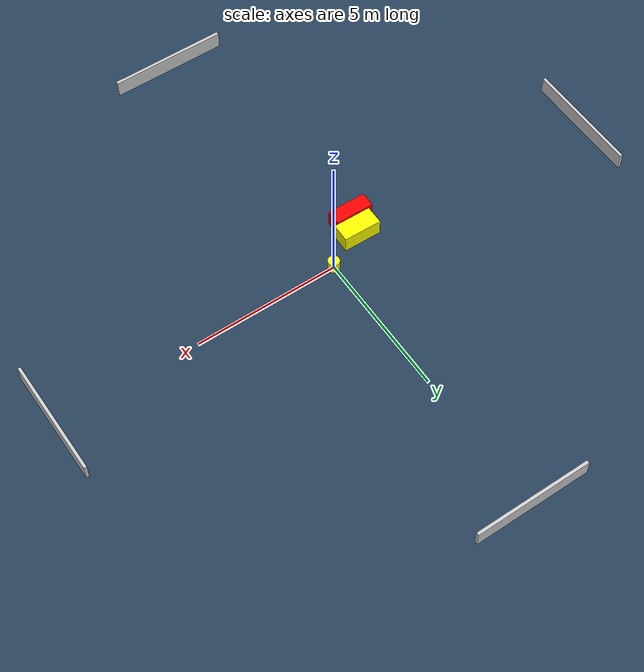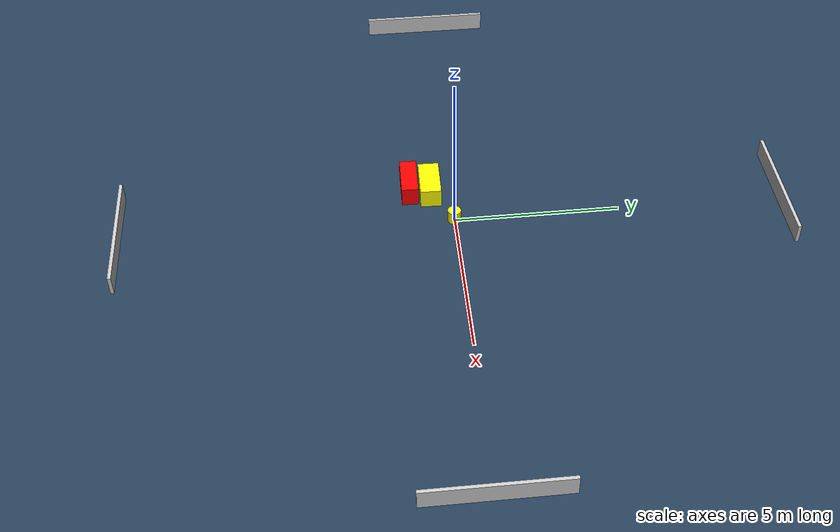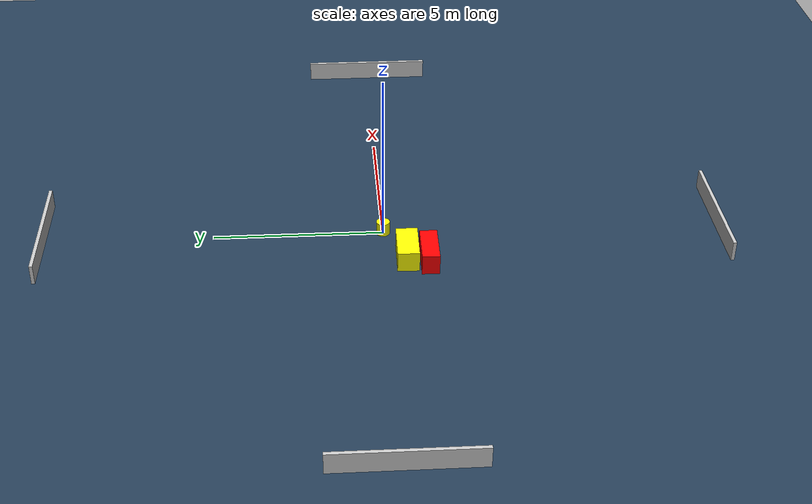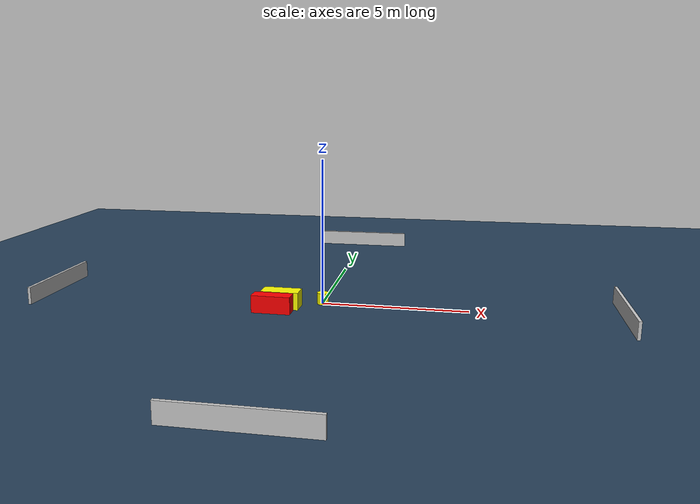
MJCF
<?xml version="1.0" ?>
<mujoco model="generated_environment">
  <option timestep="0.01" integrator="RK4" cone="elliptic"/>
  <default>
    <geom density="1"/>
  </default>
  <asset>
    <texture builtin="gradient" height="3072" name="skybox" rgb1="0.3 0.5 0.7" rgb2="0 0 0" type="skybox" width="512"/>
    <texture builtin="checker" height="300" name="groundplane" rgb1="0.2 0.3 0.4" rgb2="0.1 0.2 0.3" type="2d" width="300"/>
    <material name="groundplane" reflectance="0.2" texrepeat="5 5" texture="groundplane"/>
  </asset>
  <worldbody>
    <light dir="0 0 -1" directional="true" pos="0 0 1.5"/>
    <geom condim="3" friction="0.5 0.005 0.001" material="groundplane" name="floor" pos="0 0 0" size="0 0 0.05" type="plane"/>
    <body name="walls">
      <geom name="wall_1" condim="4" pos="-10.0 0.0 0.3" rgba="0.800000011920929 0.800000011920929 0.800000011920929 1.0" size="0.05 2.0 0.3" type="box"/>
      <geom name="wall_2" condim="4" pos="10.0 0.0 0.3" rgba="0.800000011920929 0.800000011920929 0.800000011920929 1.0" size="0.05 2.0 0.3" type="box"/>
      <geom name="wall_3" condim="4" pos="0.0 -10.0 0.3" rgba="0.800000011920929 0.800000011920929 0.800000011920929 1.0" size="2.0 0.05 0.3" type="box"/>
      <geom name="wall_4" condim="4" pos="0.0 10.0 0.3" rgba="0.800000011920929 0.800000011920929 0.800000011920929 1.0" size="2.0 0.05 0.3" type="box"/>
    </body>
    <body name="robot">
      <joint name="joint_x" type="slide" pos="0 0 0" axis="1 0 0"/>
      <joint name="joint_y" type="slide" pos="0 0 0" axis="0 1 0"/>
      <geom name="robot" type="cylinder" pos="0.0 0.0 0.2" size="0.2 0.2 0.0" mass="5.0" friction="1.0 0.005 0.0001" condim="4" rgba="1.0 1.0 0.0 1.0"/>
    </body>
    <body name="obstacle_1_movable">
      <geom name="obstacle_1_movable" condim="4" pos="-1.3393238949866344 -0.6293563951600918 0.3" euler="0 0 88.85495722329276" friction="0.0 0.005 0.001" rgba="1.0 1.0 0.0 1.0" size="0.3185289653082534 0.6529879889876309 0.3" type="box" mass="0.1"/>
      <joint type="free"/>
    </body>
    <body name="obstacle_2_static">
      <geom name="obstacle_2_static" condim="4" pos="-1.5023862237164767 -1.2520309420363849 0.3" euler="0 0 268.98405890592505" friction="0.0 0.005 0.001" rgba="1.0 0.0 0.0 1.0" size="0.25622680438879764 0.6669960163180697 0.3" type="box"/>
    </body>
  </worldbody>
  <actuator>
    <motor name="actuator_x" joint="joint_x" gear="1" ctrlrange="-1 1"/>
    <motor name="actuator_y" joint="joint_y" gear="1" ctrlrange="-1 1"/>
  </actuator>
</mujoco>
